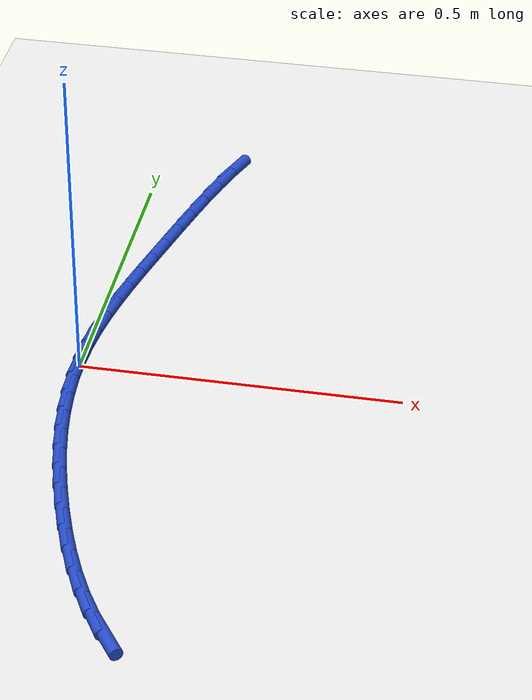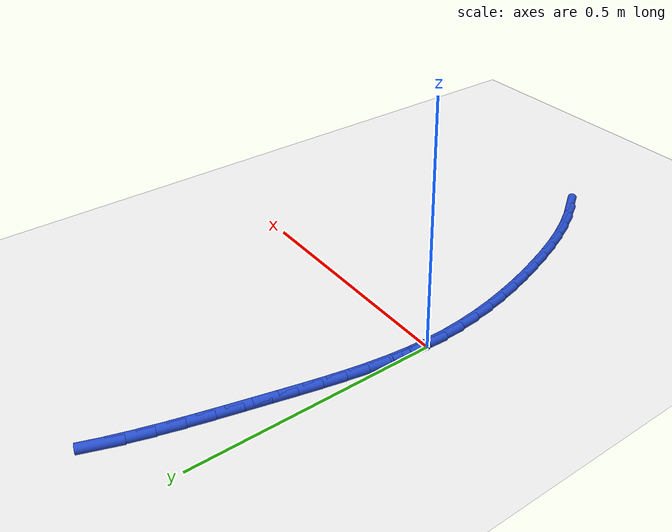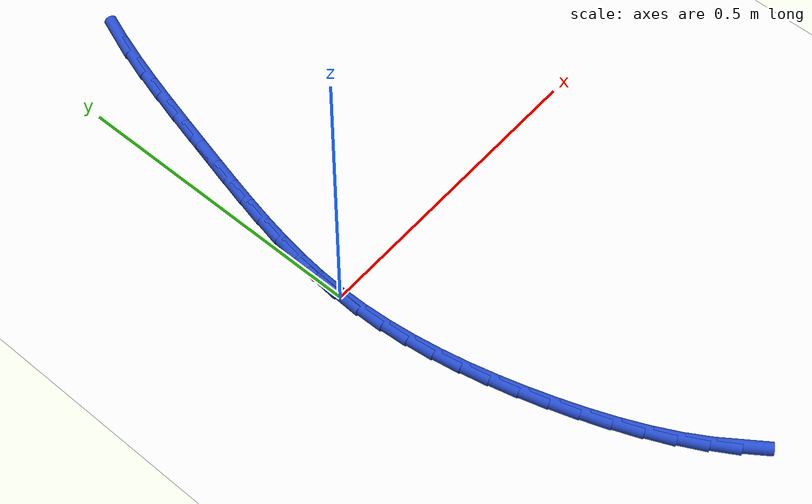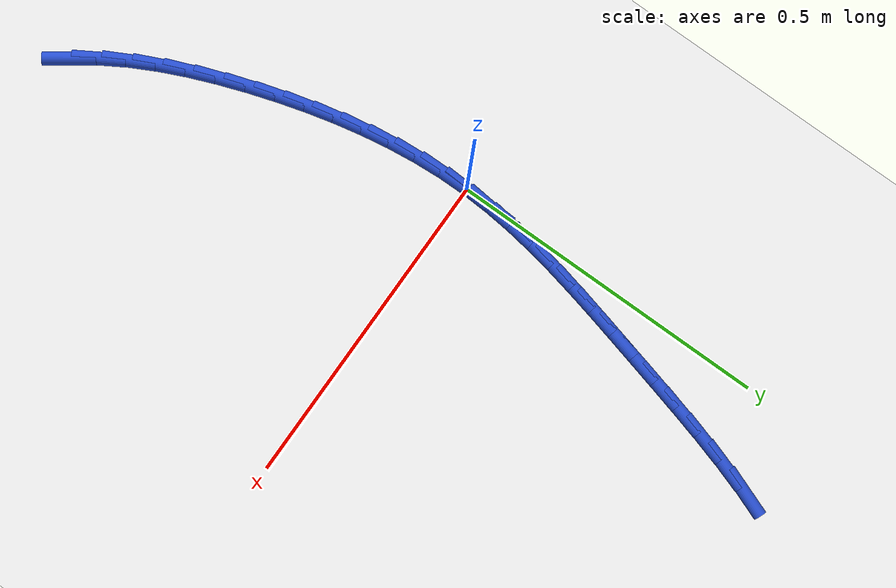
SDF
<sdf version="1.6">
 <world name="default">
  <model name="ground_plane">
   <static>1</static>
   <link name="link">
    <collision name="collision">
     <geometry><plane><normal>0 0 1</normal><size>100 100</size></plane></geometry>
     <surface><friction><ode><mu>100</mu><mu2>50</mu2></ode></friction></surface>
    </collision>
    <visual name="visual">
     <cast_shadows>0</cast_shadows>
     <geometry><plane><normal>0 0 1</normal><size>100 100</size></plane></geometry>
     <material>
      <script><uri>file://media/materials/scripts/gazebo.material</uri><name>Gazebo/WhiteGlow</name></script>
     </material>
    </visual>
   </link>
  </model>
  <model name="line">
   <link name="link_0">
    <pose>5.204170427930421e-18 6.938893903907228e-18 0.01 0 1.57 1.525094738466744</pose>
    <collision name="collision">
     <geometry><cylinder><radius>0.01</radius><length>0.08</length></cylinder></geometry>
    </collision>
    <visual name="visual">
     <material>
      <script><name>Gazebo/Blue</name><uri>file://media/materials/scripts/gazebo.material</uri></script>
     </material>
     <geometry><cylinder><radius>0.01</radius><length>0.08</length></cylinder></geometry>
    </visual>
   </link>
   <link name="link_1">
    <pose>0.0019329707417370912 0.04226603205885977 0.01 0 1.57 1.4729227705149253</pose>
    <collision name="collision">
     <geometry><cylinder><radius>0.01</radius><length>0.08</length></cylinder></geometry>
    </collision>
    <visual name="visual">
     <material>
      <script><name>Gazebo/Blue</name><uri>file://media/materials/scripts/gazebo.material</uri></script>
     </material>
     <geometry><cylinder><radius>0.01</radius><length>0.08</length></cylinder></geometry>
    </visual>
   </link>
   <link name="link_2">
    <pose>0.006068385487758424 0.08438365567221005 0.01 0 1.57 1.428232375103234</pose>
    <collision name="collision">
     <geometry><cylinder><radius>0.01</radius><length>0.08</length></cylinder></geometry>
    </collision>
    <visual name="visual">
     <material>
      <script><name>Gazebo/Blue</name><uri>file://media/materials/scripts/gazebo.material</uri></script>
     </material>
     <geometry><cylinder><radius>0.01</radius><length>0.08</length></cylinder></geometry>
    </visual>
   </link>
   <link name="link_3">
    <pose>0.012123159333029498 0.1265661151327682 0.01 0 1.57 1.3916051796267443</pose>
    <collision name="collision">
     <geometry><cylinder><radius>0.01</radius><length>0.08</length></cylinder></geometry>
    </collision>
    <visual name="visual">
     <material>
      <script><name>Gazebo/Blue</name><uri>file://media/materials/scripts/gazebo.material</uri></script>
     </material>
     <geometry><cylinder><radius>0.01</radius><length>0.08</length></cylinder></geometry>
    </visual>
   </link>
   <link name="link_4">
    <pose>0.019814207372515828 0.1690266547332516 0.01 0 1.57 1.3632613175699397</pose>
    <collision name="collision">
     <geometry><cylinder><radius>0.01</radius><length>0.08</length></cylinder></geometry>
    </collision>
    <visual name="visual">
     <material>
      <script><name>Gazebo/Blue</name><uri>file://media/materials/scripts/gazebo.material</uri></script>
     </material>
     <geometry><cylinder><radius>0.01</radius><length>0.08</length></cylinder></geometry>
    </visual>
   </link>
   <link name="link_5">
    <pose>0.028858444701182907 0.2119785187663776 0.01 0 1.57 1.3431325112576995</pose>
    <collision name="collision">
     <geometry><cylinder><radius>0.01</radius><length>0.08</length></cylinder></geometry>
    </collision>
    <visual name="visual">
     <material>
      <script><name>Gazebo/Blue</name><uri>file://media/materials/scripts/gazebo.material</uri></script>
     </material>
     <geometry><cylinder><radius>0.01</radius><length>0.08</length></cylinder></geometry>
    </visual>
   </link>
   <link name="link_6">
    <pose>0.03897278641399622 0.25563495152486354 0.01 0 1.57 1.3309381764570511</pose>
    <collision name="collision">
     <geometry><cylinder><radius>0.01</radius><length>0.08</length></cylinder></geometry>
    </collision>
    <visual name="visual">
     <material>
      <script><name>Gazebo/Blue</name><uri>file://media/materials/scripts/gazebo.material</uri></script>
     </material>
     <geometry><cylinder><radius>0.01</radius><length>0.08</length></cylinder></geometry>
    </visual>
   </link>
   <link name="link_7">
    <pose>0.04987414760592131 0.30020919730142687 0.01 0 1.57 1.3262492758702555</pose>
    <collision name="collision">
     <geometry><cylinder><radius>0.01</radius><length>0.08</length></cylinder></geometry>
    </collision>
    <visual name="visual">
     <material>
      <script><name>Gazebo/Blue</name><uri>file://media/materials/scripts/gazebo.material</uri></script>
     </material>
     <geometry><cylinder><radius>0.01</radius><length>0.08</length></cylinder></geometry>
    </visual>
   </link>
   <link name="link_8">
    <pose>0.06127949614984447 0.3459144219004965 0.01 0 1.57 1.3254450662968764</pose>
    <collision name="collision">
     <geometry><cylinder><radius>0.01</radius><length>0.08</length></cylinder></geometry>
    </collision>
    <visual name="visual">
     <material>
      <script><name>Gazebo/Blue</name><uri>file://media/materials/scripts/gazebo.material</uri></script>
     </material>
     <geometry><cylinder><radius>0.01</radius><length>0.08</length></cylinder></geometry>
    </visual>
   </link>
   <link name="link_9">
    <pose>0.07301849977512503 0.3927961903815274 0.01 0 1.57 1.3187563874229709</pose>
    <collision name="collision">
     <geometry><cylinder><radius>0.01</radius><length>0.08</length></cylinder></geometry>
    </collision>
    <visual name="visual">
     <material>
      <script><name>Gazebo/Blue</name><uri>file://media/materials/scripts/gazebo.material</uri></script>
     </material>
     <geometry><cylinder><radius>0.01</radius><length>0.08</length></cylinder></geometry>
    </visual>
   </link>
   <link name="link_10">
    <pose>0.08527166106585296 0.440378326385168 0.01 0 1.57 1.3044386406866184</pose>
    <collision name="collision">
     <geometry><cylinder><radius>0.01</radius><length>0.08</length></cylinder></geometry>
    </collision>
    <visual name="visual">
     <material>
      <script><name>Gazebo/Blue</name><uri>file://media/materials/scripts/gazebo.material</uri></script>
     </material>
     <geometry><cylinder><radius>0.01</radius><length>0.08</length></cylinder></geometry>
    </visual>
   </link>
   <link name="link_11">
    <pose>0.09828755543242554 0.48808341955977375 0.01 0 1.57 1.2822154006803026</pose>
    <collision name="collision">
     <geometry><cylinder><radius>0.01</radius><length>0.08</length></cylinder></geometry>
    </collision>
    <visual name="visual">
     <material>
      <script><name>Gazebo/Blue</name><uri>file://media/materials/scripts/gazebo.material</uri></script>
     </material>
     <geometry><cylinder><radius>0.01</radius><length>0.08</length></cylinder></geometry>
    </visual>
   </link>
   <link name="link_12">
    <pose>0.11231475828524014 0.5353340595537002 0.01 0 1.57 1.2513681553846026</pose>
    <collision name="collision">
     <geometry><cylinder><radius>0.01</radius><length>0.08</length></cylinder></geometry>
    </collision>
    <visual name="visual">
     <material>
      <script><name>Gazebo/Blue</name><uri>file://media/materials/scripts/gazebo.material</uri></script>
     </material>
     <geometry><cylinder><radius>0.01</radius><length>0.08</length></cylinder></geometry>
    </visual>
   </link>
   <link name="link_13">
    <pose>0.12760184503469407 0.5815528360153028 0.01 0 1.57 1.2107098953116975</pose>
    <collision name="collision">
     <geometry><cylinder><radius>0.01</radius><length>0.08</length></cylinder></geometry>
    </collision>
    <visual name="visual">
     <material>
      <script><name>Gazebo/Blue</name><uri>file://media/materials/scripts/gazebo.material</uri></script>
     </material>
     <geometry><cylinder><radius>0.01</radius><length>0.08</length></cylinder></geometry>
    </visual>
   </link>
   <link name="link_166">
    <pose>0.18107398827355597 -0.5860493151168367 0.01 0 1.57 -0.9522484713576519</pose>
    <collision name="collision">
     <geometry><cylinder><radius>0.01</radius><length>0.08</length></cylinder></geometry>
    </collision>
    <visual name="visual">
     <material>
      <script><name>Gazebo/Blue</name><uri>file://media/materials/scripts/gazebo.material</uri></script>
     </material>
     <geometry><cylinder><radius>0.01</radius><length>0.08</length></cylinder></geometry>
    </visual>
   </link>
   <link name="link_167">
    <pose>0.1559022905425091 -0.55068184993827 0.01 0 1.57 -1.0286676610859016</pose>
    <collision name="collision">
     <geometry><cylinder><radius>0.01</radius><length>0.08</length></cylinder></geometry>
    </collision>
    <visual name="visual">
     <material>
      <script><name>Gazebo/Blue</name><uri>file://media/materials/scripts/gazebo.material</uri></script>
     </material>
     <geometry><cylinder><radius>0.01</radius><length>0.08</length></cylinder></geometry>
    </visual>
   </link>
   <link name="link_168">
    <pose>0.13309165582994886 -0.5128109919780739 0.01 0 1.57 -1.0933482020508156</pose>
    <collision name="collision">
     <geometry><cylinder><radius>0.01</radius><length>0.08</length></cylinder></geometry>
    </collision>
    <visual name="visual">
     <material>
      <script><name>Gazebo/Blue</name><uri>file://media/materials/scripts/gazebo.material</uri></script>
     </material>
     <geometry><cylinder><radius>0.01</radius><length>0.08</length></cylinder></geometry>
    </visual>
   </link>
   <link name="link_169">
    <pose>0.11244567754489826 -0.4729054818180585 0.01 0 1.57 -1.1476298550886914</pose>
    <collision name="collision">
     <geometry><cylinder><radius>0.01</radius><length>0.08</length></cylinder></geometry>
    </collision>
    <visual name="visual">
     <material>
      <script><name>Gazebo/Blue</name><uri>file://media/materials/scripts/gazebo.material</uri></script>
     </material>
     <geometry><cylinder><radius>0.01</radius><length>0.08</length></cylinder></geometry>
    </visual>
   </link>
   <link name="link_170">
    <pose>0.09376794909638024 -0.43143406004003326 0.01 0 1.57 -1.1927539542148586</pose>
    <collision name="collision">
     <geometry><cylinder><radius>0.01</radius><length>0.08</length></cylinder></geometry>
    </collision>
    <visual name="visual">
     <material>
      <script><name>Gazebo/Blue</name><uri>file://media/materials/scripts/gazebo.material</uri></script>
     </material>
     <geometry><cylinder><radius>0.01</radius><length>0.08</length></cylinder></geometry>
    </visual>
   </link>
   <link name="link_171">
    <pose>0.07686206389341871 -0.38886546722580984 0.01 0 1.57 -1.2297665363438632</pose>
    <collision name="collision">
     <geometry><cylinder><radius>0.01</radius><length>0.08</length></cylinder></geometry>
    </collision>
    <visual name="visual">
     <material>
      <script><name>Gazebo/Blue</name><uri>file://media/materials/scripts/gazebo.material</uri></script>
     </material>
     <geometry><cylinder><radius>0.01</radius><length>0.08</length></cylinder></geometry>
    </visual>
   </link>
   <link name="link_172">
    <pose>0.06153161534503647 -0.3456684439571973 0.01 0 1.57 -1.2607330168182214</pose>
    <collision name="collision">
     <geometry><cylinder><radius>0.01</radius><length>0.08</length></cylinder></geometry>
    </collision>
    <visual name="visual">
     <material>
      <script><name>Gazebo/Blue</name><uri>file://media/materials/scripts/gazebo.material</uri></script>
     </material>
     <geometry><cylinder><radius>0.01</radius><length>0.08</length></cylinder></geometry>
    </visual>
   </link>
   <link name="link_173">
    <pose>0.0476235091935944 -0.302259508861189 0.01 0 1.57 -1.2926106051475632</pose>
    <collision name="collision">
     <geometry><cylinder><radius>0.01</radius><length>0.08</length></cylinder></geometry>
    </collision>
    <visual name="visual">
     <material>
      <script><name>Gazebo/Blue</name><uri>file://media/materials/scripts/gazebo.material</uri></script>
     </material>
     <geometry><cylinder><radius>0.01</radius><length>0.08</length></cylinder></geometry>
    </visual>
   </link>
   <link name="link_174">
    <pose>0.035207874999221456 -0.2587860381929125 0.01 0 1.57 -1.3277223943868972</pose>
    <collision name="collision">
     <geometry><cylinder><radius>0.01</radius><length>0.08</length></cylinder></geometry>
    </collision>
    <visual name="visual">
     <material>
      <script><name>Gazebo/Blue</name><uri>file://media/materials/scripts/gazebo.material</uri></script>
     </material>
     <geometry><cylinder><radius>0.01</radius><length>0.08</length></cylinder></geometry>
    </visual>
   </link>
   <link name="link_175">
    <pose>0.0244265492573314 -0.21530895070114753 0.01 0 1.57 -1.3662983669982558</pose>
    <collision name="collision">
     <geometry><cylinder><radius>0.01</radius><length>0.08</length></cylinder></geometry>
    </collision>
    <visual name="visual">
     <material>
      <script><name>Gazebo/Blue</name><uri>file://media/materials/scripts/gazebo.material</uri></script>
     </material>
     <geometry><cylinder><radius>0.01</radius><length>0.08</length></cylinder></geometry>
    </visual>
   </link>
   <link name="link_176">
    <pose>0.015421402044063367 -0.171889124646179 0.01 0 1.57 -1.4085667225104788</pose>
    <collision name="collision">
     <geometry><cylinder><radius>0.01</radius><length>0.08</length></cylinder></geometry>
    </collision>
    <visual name="visual">
     <material>
      <script><name>Gazebo/Blue</name><uri>file://media/materials/scripts/gazebo.material</uri></script>
     </material>
     <geometry><cylinder><radius>0.01</radius><length>0.08</length></cylinder></geometry>
    </visual>
   </link>
   <link name="link_177">
    <pose>0.008334303435557019 -0.12858743828829466 0.01 0 1.57 -1.4547415936309889</pose>
    <collision name="collision">
     <geometry><cylinder><radius>0.01</radius><length>0.08</length></cylinder></geometry>
    </collision>
    <visual name="visual">
     <material>
      <script><name>Gazebo/Blue</name><uri>file://media/materials/scripts/gazebo.material</uri></script>
     </material>
     <geometry><cylinder><radius>0.01</radius><length>0.08</length></cylinder></geometry>
    </visual>
   </link>
   <link name="link_178">
    <pose>0.0033071235079514642 -0.0854647698877794 0.01 0 1.57 -1.5050050244648292</pose>
    <collision name="collision">
     <geometry><cylinder><radius>0.01</radius><length>0.08</length></cylinder></geometry>
    </collision>
    <visual name="visual">
     <material>
      <script><name>Gazebo/Blue</name><uri>file://media/materials/scripts/gazebo.material</uri></script>
     </material>
     <geometry><cylinder><radius>0.01</radius><length>0.08</length></cylinder></geometry>
    </visual>
   </link>
   <link name="link_179">
    <pose>0.00048173233738603004 -0.04258199770491922 0.01 0 1.57 -1.5594837577891905</pose>
    <collision name="collision">
     <geometry><cylinder><radius>0.01</radius><length>0.08</length></cylinder></geometry>
    </collision>
    <visual name="visual">
     <material>
      <script><name>Gazebo/Blue</name><uri>file://media/materials/scripts/gazebo.material</uri></script>
     </material>
     <geometry><cylinder><radius>0.01</radius><length>0.08</length></cylinder></geometry>
    </visual>
   </link>
   <link name="link_180">
    <pose>1.3877787807814457e-17 2.0816681711721685e-17 0.01 0 1.57 1.5233714634943085</pose>
    <collision name="collision">
     <geometry><cylinder><radius>0.01</radius><length>0.08</length></cylinder></geometry>
    </collision>
    <visual name="visual">
     <material>
      <script><name>Gazebo/Blue</name><uri>file://media/materials/scripts/gazebo.material</uri></script>
     </material>
     <geometry><cylinder><radius>0.01</radius><length>0.08</length></cylinder></geometry>
    </visual>
   </link>
   <link name="link_181">
    <pose>0.0020037965719327255 0.04222034496669244 0.01 0 1.57 1.5233714634943083</pose>
    <collision name="collision">
     <geometry><cylinder><radius>0.01</radius><length>0.08</length></cylinder></geometry>
    </collision>
    <visual name="visual">
     <material>
      <script><name>Gazebo/Blue</name><uri>file://media/materials/scripts/gazebo.material</uri></script>
     </material>
     <geometry><cylinder><radius>0.01</radius><length>0.08</length></cylinder></geometry>
    </visual>
   </link>
  </model>
 </world>
</sdf>
